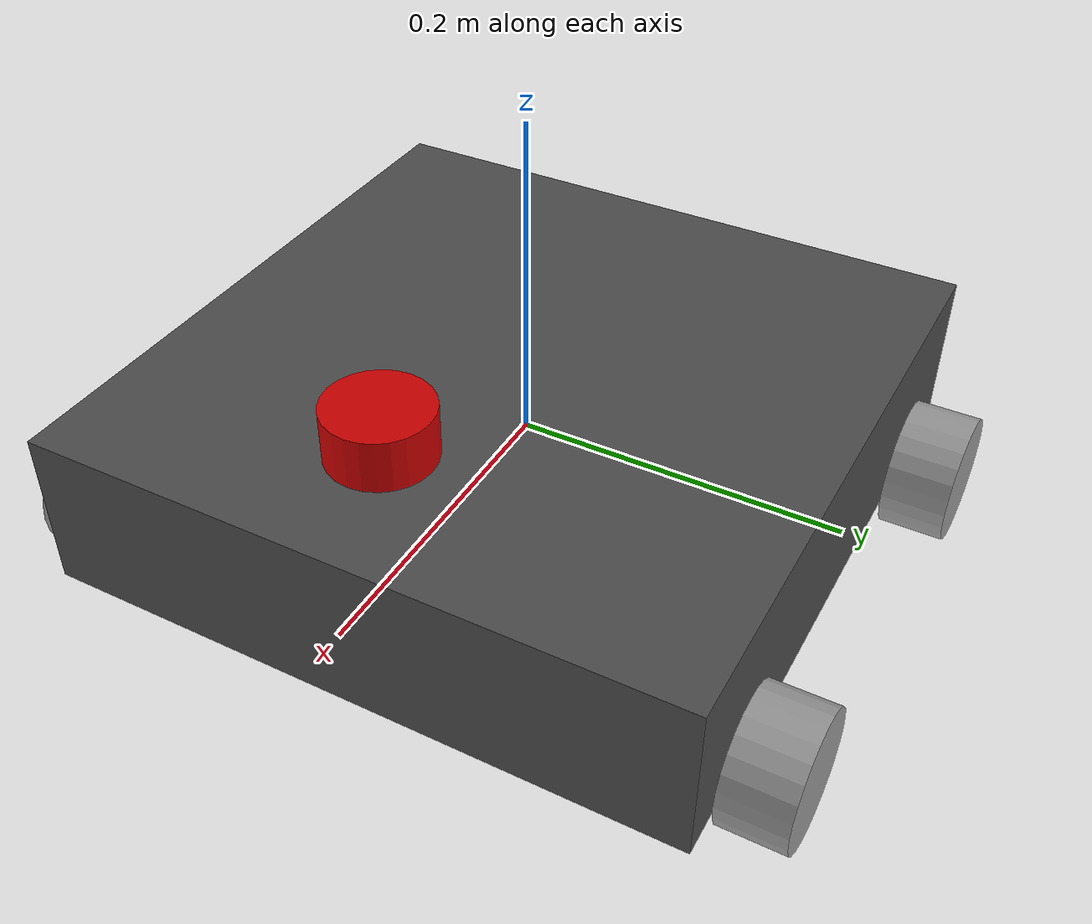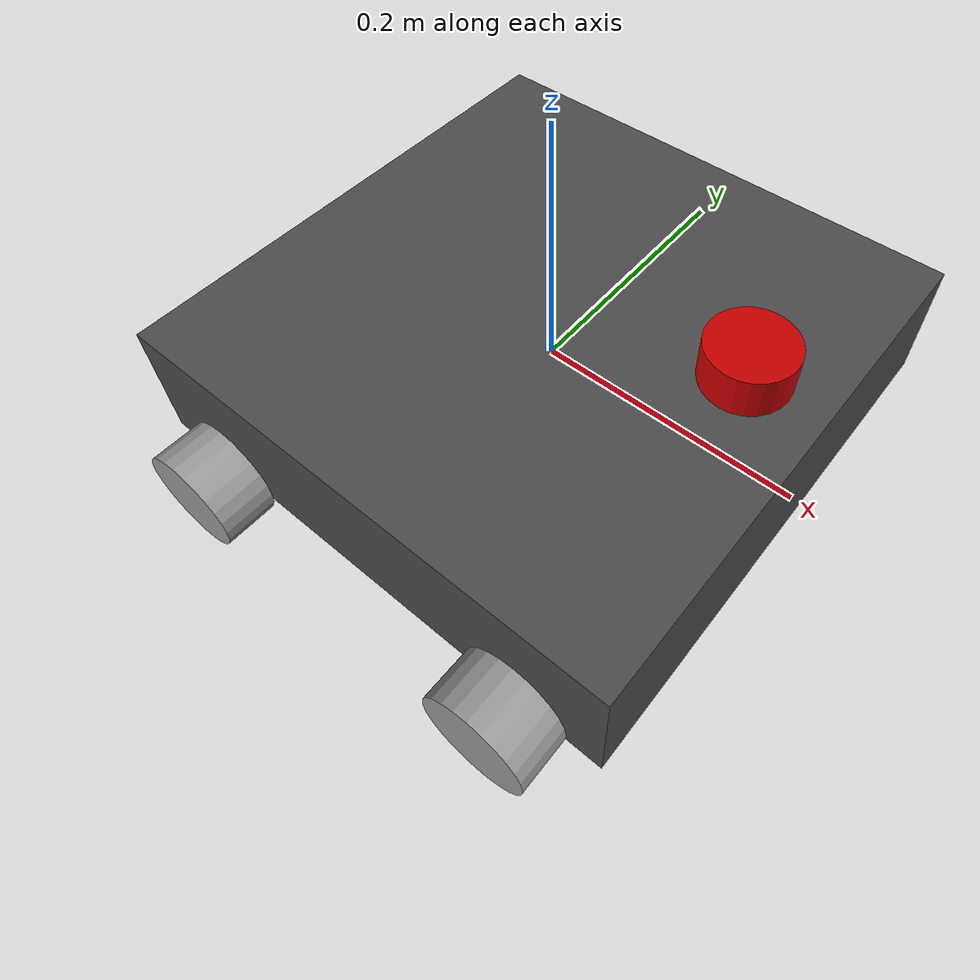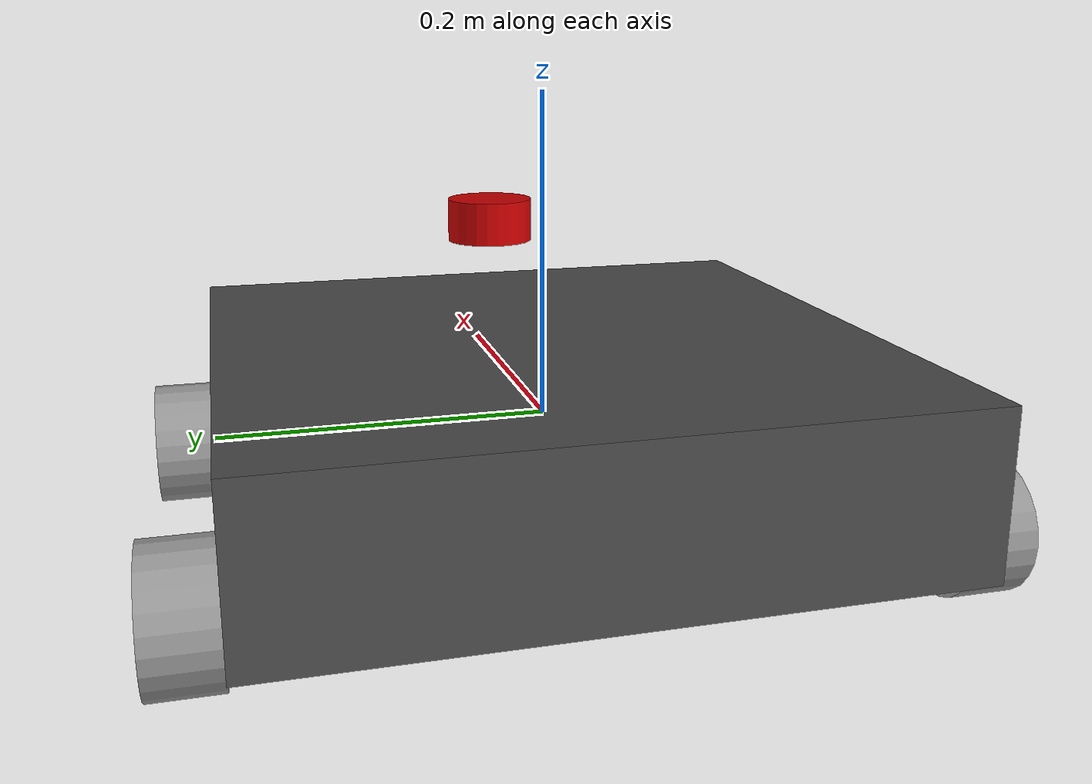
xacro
<?xml version="1.0" ?>

<!-- Author: YueLin -->

<robot name="rect" xmlns:xacro="http://www.ros.org/wiki/xacro">

    <xacro:property name="robot_mass" value="15" />
    <xacro:property name="robot_width" value="0.4" />
    <xacro:property name="robot_length" value="0.4" />
    <xacro:property name="robot_height" value="0.1" />

    <xacro:property name="PI" value="3.141592653589793" />

    <xacro:macro name="box_inertial_matrix" params="m l h w">
        <inertial>
            <mass value="${m}" />
            <inertia ixx="${(m * (l * l + h * h)) / 12}" iyz="0"
                     iyy="${(m * (w * w + h * h)) / 12}" ixz="0"
                     izz="${(m * (w * w + l * l)) / 12}" ixy="0" />
        </inertial>
    </xacro:macro>

    <xacro:macro name="cylinder_inertial_matrix" params="m r h xyz rpy">
        <inertial>
            <mass value="${m}" />
            <origin xyz="${xyz}" rpy="${rpy}" />
            <inertia izz="${m * r * r / 2}" ixy="0"
                     ixx="${m * (3 * r * r + h * h) / 12}" iyz="0"
                     iyy="${m * (3 * r * r + h * h) / 12}" ixz="0" />
        </inertial>
    </xacro:macro>

    <xacro:macro name="wheel_link" params="name x">
        <link name="${name}">
            <pose>0 0 0 0 0 0</pose>
            <visual>
                <origin xyz="${x} 0 0" rpy="0 ${PI / 2} 0" />
                <geometry>
                    <cylinder length="${robot_width / 10}"
                              radius="${robot_length / 10}" />
                </geometry>
                <material name="wheel_color">
                    <color rgba="0.6 0.6 0.6 1" />
                </material>
            </visual>
            <collision>
                <origin xyz="${x} 0 0" rpy="0 ${PI / 2} 0" />
                <geometry>
                    <cylinder length="${robot_width / 10}"
                              radius="${robot_length / 10}" />
                </geometry>
            </collision>
            <xacro:cylinder_inertial_matrix m="0.525"
                                            h="${robot_width / 10}"
                                            r="${robot_length / 10}"
                                            xyz="${x} 0 0" rpy="0 ${PI / 2} 0" />
        </link>
    </xacro:macro>

    <xacro:macro name="wheel_joint" params="name x y">
        <joint name="${name}_joint" type="fixed">
            <child link="${name}" />
            <parent link="base_link" />
            <origin xyz="${x} ${y} -0.045" rpy="0 0 ${PI / 2}" />
        </joint>
    </xacro:macro>

    <link name="base_link">
        <visual>
            <geometry>
                <box size="${robot_length} ${robot_width} ${robot_height}" />
            </geometry>
            <material name="robot_color">
                    <color rgba="0.3 0.3 0.3 1" />
                </material>
        </visual>
        <collision>
            <geometry>
                <box size="${robot_length} ${robot_width} ${robot_height}" />
            </geometry>
        </collision>
        <xacro:box_inertial_matrix m="${robot_mass}"
         l="${robot_length}" h="${robot_height}" w="${robot_width}" />
    </link>

    <link name="laser1">
        <pose>0 0 0 0 0 0</pose>
        <visual>
            <origin xyz="0 0 0" rpy="0 0 0" />
            <geometry>
                <cylinder radius="0.03" length="0.03" />
            </geometry>
            <material name="laser_color" >
                <color rgba="0.8 0 0 1" />
            </material>
        </visual>
        <collision>
            <origin xyz="0 0 0" rpy="0 0 0" />
            <geometry>
                <cylinder radius="0.03" length="0.03" />
            </geometry>
        </collision>
        <xacro:cylinder_inertial_matrix m="0.2" r="0.03" h="0.03"
                                        xyz="0 0 0" rpy="0 ${PI / 2} 0" />
    </link>

    <xacro:wheel_link name="left_back_wheel" x="0.02" />
    <xacro:wheel_link name="left_front_wheel" x="0.02" />
    <xacro:wheel_link name="right_back_wheel" x="-0.02" />
    <xacro:wheel_link name="right_front_wheel" x="-0.02" />

    <xacro:wheel_joint name="left_front_wheel"
                       x="${robot_length / 3}" y="${robot_width / 2}" />
    <xacro:wheel_joint name="left_back_wheel"
                       x="${-robot_length / 3}" y="${robot_width / 2}" />
    <xacro:wheel_joint name="right_front_wheel"
                       x="${robot_length / 3}" y="${-robot_width / 2}" />
    <xacro:wheel_joint name="right_back_wheel"
                       x="${-robot_length / 3}" y="${-robot_width / 2}" />

    <joint name="laser_joint" type="fixed">
        <origin xyz="0.15 0 0.1" rpy="0 0 0" />
        <parent link="base_link" />
        <child link="laser1" />
    </joint>

</robot>
